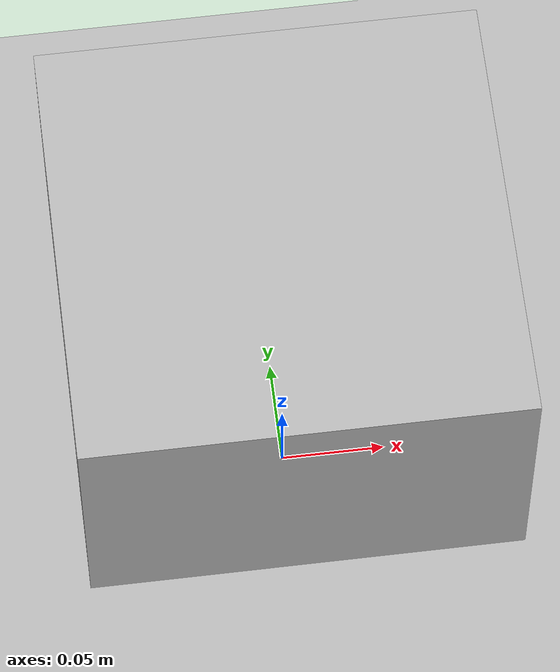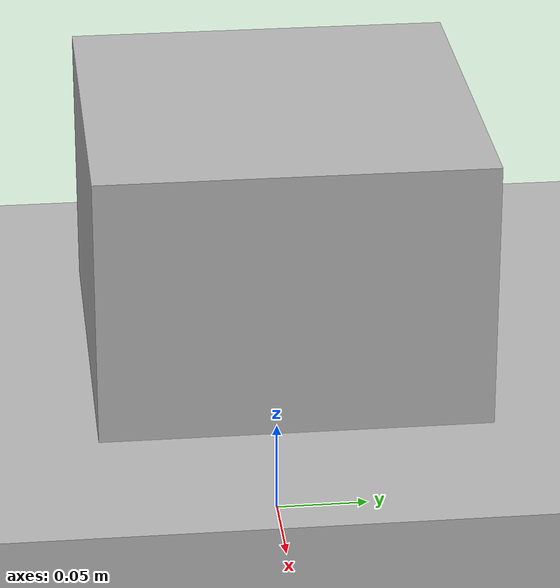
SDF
<?xml version="1.0"?>
<sdf version="1.9">
  <world name="contact_test">
    <physics name="1ms" type="ode">
      <max_step_size>0.001</max_step_size>
      <real_time_factor>0</real_time_factor>
    </physics>
    <plugin filename="gz-sim-physics-system" name="gz::sim::systems::Physics"/>

    <model name="ground">
      <static>true</static>
      <link name="ground_link">
        <collision name="ground_collision">
          <geometry>
            <box><size>2 2 0.2</size></box>
          </geometry>
        </collision>
        <visual name="ground_visual">
          <geometry>
            <box><size>2 2 0.2</size></box>
          </geometry>
        </visual>
      </link>
    </model>

    <model name="contact_test_model">
      <pose>0 0 0.14 0 0 0</pose>
      <static>false</static>
      <link name="box_link">
        <inertial>
          <mass>1</mass>
          <inertia><ixx>0.01</ixx><iyy>0.01</iyy><izz>0.01</izz></inertia>
        </inertial>
        <collision name="box_collision">
          <geometry>
            <box><size>0.2 0.2 0.2</size></box>
          </geometry>
        </collision>
        <visual name="box_visual">
          <geometry>
            <box><size>0.2 0.2 0.2</size></box>
          </geometry>
        </visual>
      </link>

      <plugin filename="ContactModelPlugin"
              name="drcsim_gazebo_ros_plugins::ContactModelPlugin">
        <contact>
          <collision>box_link::box_collision</collision>
          <topic>/contact_test/contacts</topic>
        </contact>
      </plugin>
    </model>
  </world>
</sdf>
